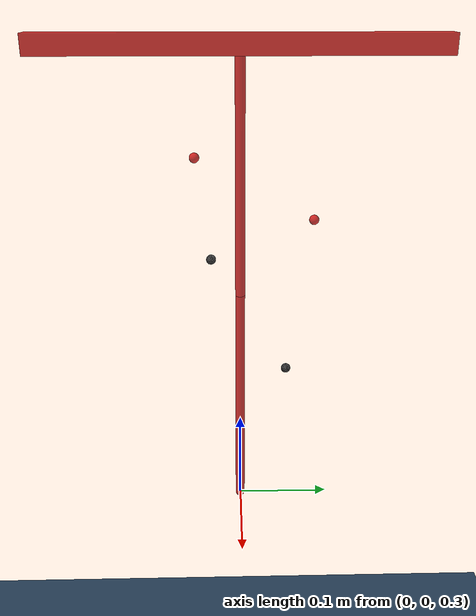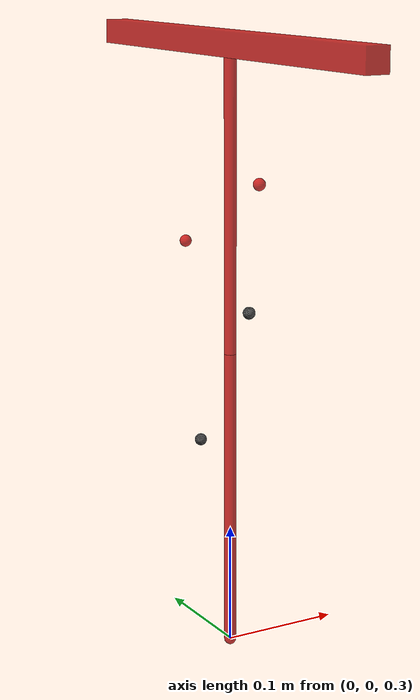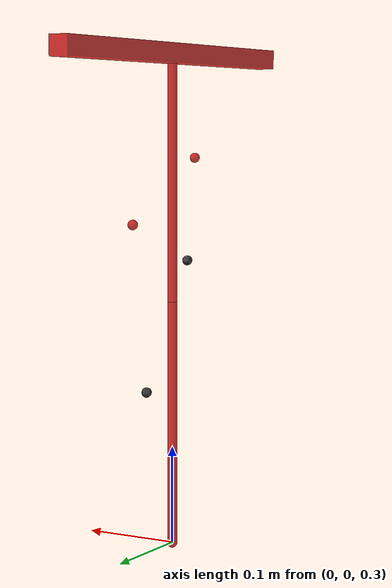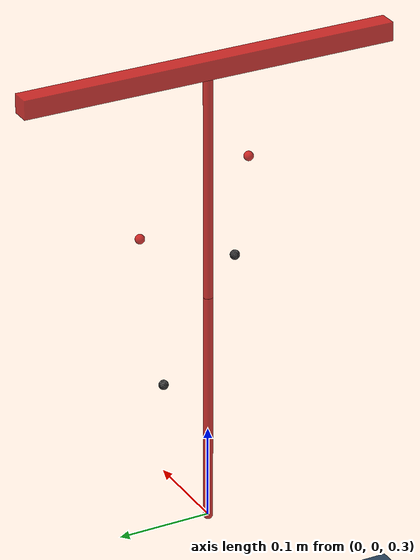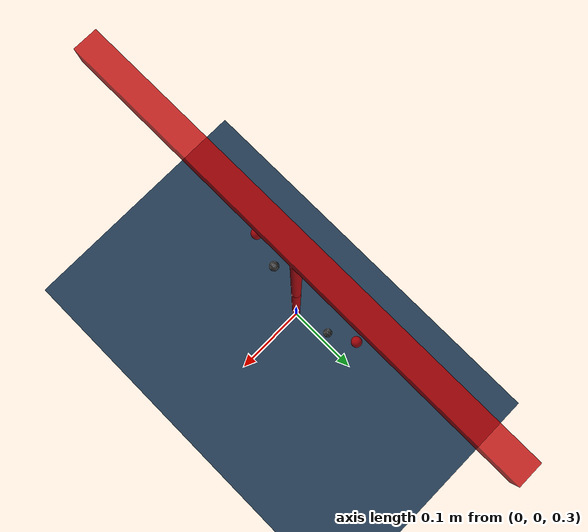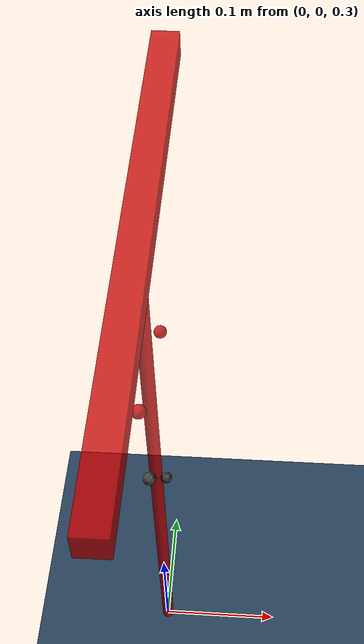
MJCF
<!-- Ideal single-leg rod-ball model -->

<mujoco model="v2_4">
    <compiler angle="radian"/>
    <option timestep="0.001" iterations="2000" gravity="0 0 -9.8" tolerance="1e-10"/>

    <default>
        <geom density="418"/>
    </default>

        <asset>
                <texture name="grid" type="2d" builtin="checker" rgb1=".1 .2 .3"
                        rgb2=".2 .3 .4" width="300" height="300"/>
                <material name="grid" texture="grid" texrepeat="8 8" reflectance=".2"/>
        </asset>

        <worldbody>
                <light name="top" pos="0 0 5"/>
                <camera name="closeup" pos="1.483 -0.033 0.580" xyaxes="0.040 0.999 -0.000 -0.129 0.005 0.992"/>

                <geom size="10 10 .01" type="plane" material="grid" friction="1 0.005 0.0001"/>

                <body name="Base" pos="0 0 0.8">
                        <geom size="0.01 0.2 0.01" type="box" rgba="0.8 0 0 0.8" mass="0.155" contype="0" conaffinity="0"/>
                        <body name="RB_Thigh" pos="0 0 0">
                                <geom size="0.005" type="capsule" rgba="0.8 0 0 0.8" mass="0.086" fromto="0 0 0 0 0 -0.25" contype="0" conaffinity="0"/>
                                <joint name="RB_Shoulder" type="hinge" axis="1 0 0" range="-1.57 1.57"/>
                                <site name="C1" pos="0 -0.02999933715459505 -0.20999803968200498"/>
                                <body name="RB_Calf" pos="0 0 -0.25">
                                        <geom size="0.005" type="capsule" rgba="0.8 0 0 0.8" mass="0.1033" fromto="0 0 0 0 0 -0.25" contype="0" conaffinity="0"/>
                                        <joint name="RB_Elbow" type="hinge" axis="1 0 0" range="0 1.57"/>
                                        <site name="D1" pos="0  0.05 -0.08660254037844388"/>
                                </body>
                        </body>
                        <body name="RB_MAA_UPLink" pos="0 -0.06 0" axisangle="1 0 0 0.1419014548">
                                <geom size="0.005" type="sphere" rgba="0.8 0 0 0.8" mass="0.03" contype="0" conaffinity="0"/>
                                <joint name="RB_MAA_UpJoint" type="hinge" axis="1 0 0"/>
                                <body name="RB_MAA_FM_Link" pos="0 0 -0.1060650937413537">
                                        <geom size="0.005" type="sphere" rgba="0.8 0 0 0.8" mass="0.12" contype="0" conaffinity="0"/>
                                        <joint name="RB_MAA_SlideJoint" type="slide" axis="0 0 -1" damping="22.68" stiffness="637.52" springref="-0.019065093741353706"/>
                                        <body name="RB_MAA_LOLink" pos="0 0 -0.1060650937413537">
                                                <geom size="0.005" type="sphere" rgba="0.8 0 0 0.8" mass="0.03" contype="0" conaffinity="0"/>
                                                <joint name="RB_MAA_FM_SlideJoint" type="slide" axis="0 0 -1" damping="22.68" stiffness="637.52" springref="-0.019065093741353706"/>
                                                <site name="C2"/>
                                        </body>
                                </body>
                        </body>
                        <body name="RB_BAA_UPLink" pos="0 0.1 0" axisangle="1 0 0 -0.147464847">
                                <geom size="0.005" type="sphere" rgba="0.8 0 0 0.8" mass="0.04544333333" contype="0" conaffinity="0"/>
                                <joint name="RB_BAA_UpJoint" type="hinge" axis="1 0 0"/>
                                <body name="RB_BAA_FM_LINK" pos="0 0 -0.17014792842496052">
                                        <geom size="0.005" type="sphere" rgba="0.8 0 0 0.8" mass="0.1817733333" contype="0" conaffinity="0"/>
                                        <joint name="RB_BAA_SlideJoint" type="slide" axis="0 0 -1" damping="21.8" stiffness="631.6" springref="-0.044147928424960514"/>
                                        <body name="RB_BAA_LOLink" pos="0 0 -0.17014792842496052">
                                                <geom size="0.005" type="sphere" rgba="0.8 0 0 0.8" mass="0.04544333333" contype="0" conaffinity="0"/>
                                                <joint name="RB_BAA_FM_SlideJoint" type="slide" axis="0 0 -1" damping="21.8" stiffness="631.6" springref="-0.044147928424960514"/>
                                                <site name="D2"/>
                                        </body>
                                </body>
                        </body>
                </body>

        </worldbody>

                    <!-- Add 8 position controllers to joints like RB_RB_BAA_LowerJoint, with position limits -->
        <actuator>
                <motor joint="RB_MAA_SlideJoint" ctrllimited="true" ctrlrange="-200 200" />
                <motor joint="RB_MAA_FM_SlideJoint" ctrllimited="true" ctrlrange="-200 200" />
                <motor joint="RB_BAA_SlideJoint" ctrllimited="true" ctrlrange="-200 200" />
                <motor joint="RB_BAA_FM_SlideJoint" ctrllimited="true" ctrlrange="-200 200" />
        </actuator>

        <!-- Establish parallel relationships, e.g., RB_RB_BAA_LOLink should connect with RB_Calf -->
        <equality>
                <connect name="MAA_connect" anchor="0 0 0" body2="RB_Calf" body1="RB_BAA_LOLink" solimp="0.95 0.99 0.00001 0.1 2"/>
                <connect name="BAA_connect" anchor="0 0 0" body2="RB_Thigh" body1="RB_MAA_LOLink" solimp="0.95 0.99 0.00001 0.1 2"/>

                <!-- FM equality constraints -->
                <joint name="MAA" joint1="RB_MAA_SlideJoint" joint2="RB_MAA_FM_SlideJoint" solimp="0.95 0.99 0.00001 0.1 2"/>
                <joint name="BAA" joint1="RB_BAA_SlideJoint" joint2="RB_BAA_FM_SlideJoint" solimp="0.95 0.99 0.00001 0.1 2"/>
        </equality>

        <!-- For visualizing joint angles, draw main joint curves -->

</mujoco>
